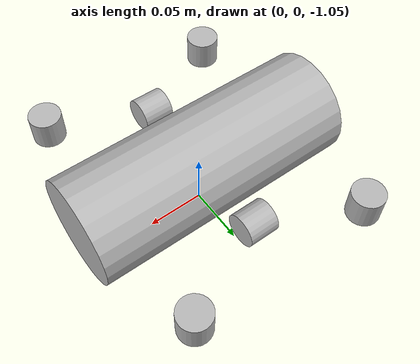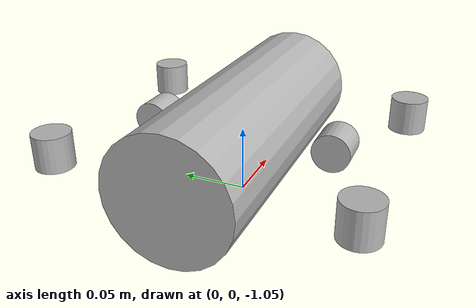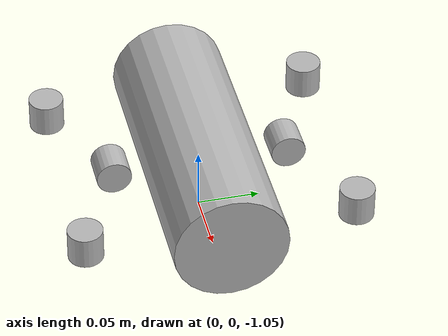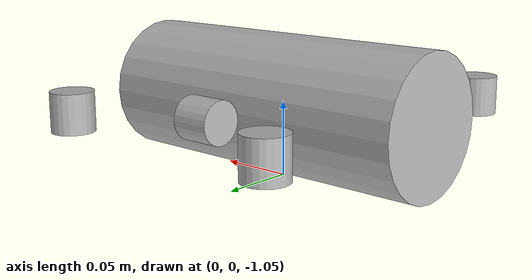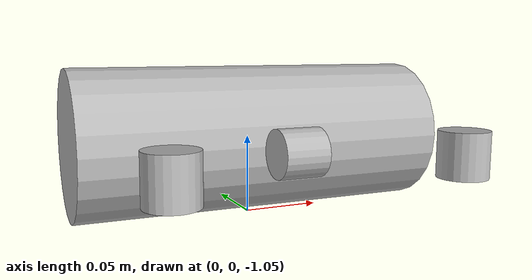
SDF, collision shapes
<?xml version='1.0'?>
<sdf version='1.7'>
  <model name='pico'>
    <pose>0 0 -1 0 0 0</pose>
    <link name="hull">
    	<pose>0 0 0 0 0 0</pose>
      <inertial>
        <mass>1.360776</mass>
        <inertia>
          <ixx>1.42222E-03</ixx>
          <ixy>0</ixy>
          <ixz>0</ixz>
          <iyy>6.703089E-03</iyy>
          <iyz>0</iyz>
          <izz>6.703089E-03</izz>
        </inertia>
      </inertial>

      <visual name='hull_visual'>
        <geometry>
            <mesh><uri>model://pico/pico.dae</uri></mesh>
        </geometry>
      </visual>

      <collision name='hull_collision'>
        <pose>0 0 0 0 1.5707963267948966 0</pose>
        <geometry>
          <cylinder>
            <radius>4.572000E-02</radius>
            <length>2.2887000E-01</length>
          </cylinder>
        </geometry>
      </collision>

      <sensor type="imu" name="imu_sensor">
        <always_on>1</always_on>
        <update_rate>200</update_rate>
      </sensor>

      <sensor type="camera" name="camera_sensor">
        <always_on>1</always_on>
        <update_rate>30</update_rate>
        <visualize>true</visualize> <!--See the camera cone in the GUI-->
        <pose>1.017E-1 0 0 0 0 0</pose>
        <camera>
          <horizontal_fov>1.047</horizontal_fov>
          <image>
            <width>320</width>
            <height>240</height>
          </image>
          <clip>
            <near>0.001</near>
            <far>100</far>
          </clip>
        </camera>
      </sensor>

    </link>

    <link name="thruster_1">
      <pose>0.082 -0.108 0 0 0 0</pose>
      <inertial>
        <pose>0 0 0 0 0 0</pose>
        <mass>2.599998E-02</mass>
        <inertia>
          <ixx>2.738659E-06</ixx>
          <ixy>0</ixy>
          <ixz>0</ixz>
          <iyy>2.738659E-06</iyy>
          <iyz>0</iyz>
          <izz>2.547998E-06</izz>
        </inertia>
      </inertial>

      <collision name="thruster_1_collision">
        <pose>0 0 0 0 0 0</pose>
        <geometry>
          <cylinder>
            <radius>1.400000E-02</radius>
            <length>2.599995E-02</length>
          </cylinder>
        </geometry>
      </collision>
    </link>

    <link name="thruster_2">
      <pose>0 -0.071 0.0 0 0 0</pose>
      <inertial>
        <pose>0 0 0 0 1.5707963267948966 0</pose>
        <mass>2.599998E-02</mass>
        <inertia>
          <ixx>2.738659E-06</ixx>
          <ixy>0</ixy>
          <ixz>0</ixz>
          <iyy>2.738659E-06</iyy>
          <iyz>0</iyz>
          <izz>2.547998E-06</izz>
        </inertia>
      </inertial>

      <collision name="thruster_2_collision">
        <pose>0 0 0 0 1.5707963267948966 0</pose>
        <geometry>
          <cylinder>
            <radius>1.400000E-02</radius>
            <length>2.599995E-02</length>
          </cylinder>
        </geometry>
      </collision>
    </link>

    <link name="thruster_3">
      <pose>-0.082 -0.108 0 0 0 0</pose>
      <inertial>
        <pose>0 0 0 0 0 0</pose>
        <mass>2.599998E-02</mass>
        <inertia>
          <ixx>2.738659E-06</ixx>
          <ixy>0</ixy>
          <ixz>0</ixz>
          <iyy>2.738659E-06</iyy>
          <iyz>0</iyz>
          <izz>2.547998E-06</izz>
        </inertia>
      </inertial>

      <collision name="thruster_3_collision">
        <pose>0 0 0 0 0 0</pose>
        <geometry>
          <cylinder>
            <radius>1.400000E-02</radius>
            <length>2.599995E-02</length>
          </cylinder>
        </geometry>
      </collision>
    </link>

    <link name="thruster_4">
      <pose>-0.082 0.108 0 0 0 0</pose>
      <inertial>
        <pose>0 0 0 0 0 0</pose>
        <mass>2.599998E-02</mass>
        <inertia>
          <ixx>2.738659E-06</ixx>
          <ixy>0</ixy>
          <ixz>0</ixz>
          <iyy>2.738659E-06</iyy>
          <iyz>0</iyz>
          <izz>2.547998E-06</izz>
        </inertia>
      </inertial>

      <collision name="thruster_4_collision">
        <pose>0 0 0 0 0 0</pose>
        <geometry>
          <cylinder>
            <radius>1.400000E-02</radius>
            <length>2.599995E-02</length>
          </cylinder>
        </geometry>
      </collision>
    </link>

    <link name="thruster_5">
      <pose>0 0.071 0.0 0 0 0</pose>
      <inertial>
        <pose>0 0 0 0 1.5707963267948966 0</pose>
        <mass>2.599998E-02</mass>
        <inertia>
          <ixx>2.738659E-06</ixx>
          <ixy>0</ixy>
          <ixz>0</ixz>
          <iyy>2.738659E-06</iyy>
          <iyz>0</iyz>
          <izz>2.547998E-06</izz>
        </inertia>
      </inertial>

      <collision name="thruster_5_collision">
        <pose>0 0 0 0 1.5707963267948966 0</pose>
        <geometry>
          <cylinder>
            <radius>1.400000E-02</radius>
            <length>2.599995E-02</length>
          </cylinder>
        </geometry>
      </collision>
    </link>

    <link name="thruster_6">
      <pose>0.082 0.108 0 0 0 0</pose>
      <inertial>
        <pose>0 0 0 0 0 0</pose>
        <mass>2.599998E-02</mass>
        <inertia>
          <ixx>2.738659E-06</ixx>
          <ixy>0</ixy>
          <ixz>0</ixz>
          <iyy>2.738659E-06</iyy>
          <iyz>0</iyz>
          <izz>2.547998E-06</izz>
        </inertia>
      </inertial>

      <collision name="thruster_6_collision">
        <pose>0 0 0 0 0 0</pose>
        <geometry>
          <cylinder>
            <radius>1.400000E-02</radius>
            <length>2.599995E-02</length>
          </cylinder>
        </geometry>
      </collision>
    </link>

    <joint name="thruster_1_joint" type="revolute">
      <child>thruster_1</child>
      <parent>hull</parent>
      <axis>
        <xyz>0 0 1</xyz>
        <limit>
          <lower>-1e+16</lower>
          <upper>1e+16</upper>
        </limit>
      </axis>
    </joint>

    <joint name="thruster_2_joint" type="revolute">
      <child>thruster_2</child>
      <parent>hull</parent>
      <axis>
        <xyz>1 0 0</xyz>
        <limit>
          <lower>-1e+16</lower>
          <upper>1e+16</upper>
        </limit>
      </axis>
    </joint>

    <joint name="thruster_3_joint" type="revolute">
      <child>thruster_3</child>
      <parent>hull</parent>
      <axis>
        <xyz>0 0 1</xyz>
        <limit>
          <lower>-1e+16</lower>
          <upper>1e+16</upper>
        </limit>
      </axis>
    </joint>

    <joint name="thruster_4_joint" type="revolute">
      <child>thruster_4</child>
      <parent>hull</parent>
      <axis>
        <xyz>0 0 1</xyz>
        <limit>
          <lower>-1e+16</lower>
          <upper>1e+16</upper>
        </limit>
      </axis>
    </joint>

    <joint name="thruster_5_joint" type="revolute">
      <child>thruster_5</child>
      <parent>hull</parent>
      <axis>
        <xyz>1 0 0</xyz>
        <limit>
          <lower>-1e+16</lower>
          <upper>1e+16</upper>
        </limit>
      </axis>
    </joint>

    <joint name="thruster_6_joint" type="revolute">
      <child>thruster_6</child>
      <parent>hull</parent>
      <axis>
        <xyz>0 0 1</xyz>
        <limit>
          <lower>-1e+16</lower>
          <upper>1e+16</upper>
        </limit>
      </axis>
    </joint>

    <!--Hydrodynamics-->
    <plugin name="BuoyancyPlugin" filename="libBuoyancyPlugin.so">
      <fluid_density>1000</fluid_density>
      <link name="hull">
        <center_of_volume>0 0 0</center_of_volume>
        <volume>0.15e-02</volume>
      </link>
    </plugin>

    <plugin name="ThrusterPlugin" filename="libThrusterPlugin.so"/>

    <plugin name="DepthSensorPlugin" filename="libDepthSensorPlugin.so"/>

  </model>
</sdf>
